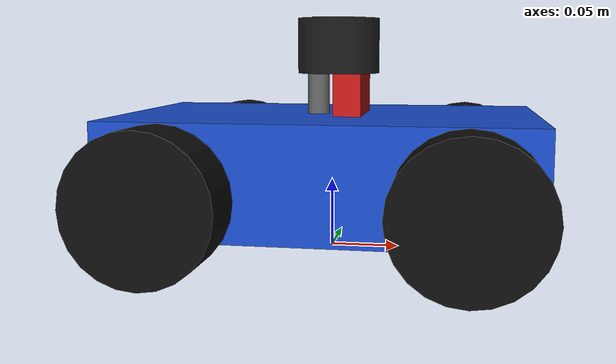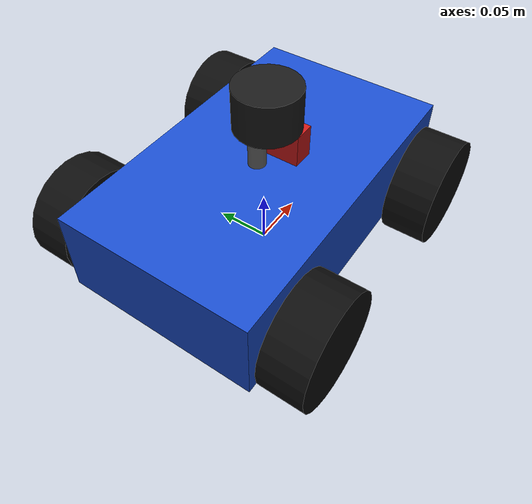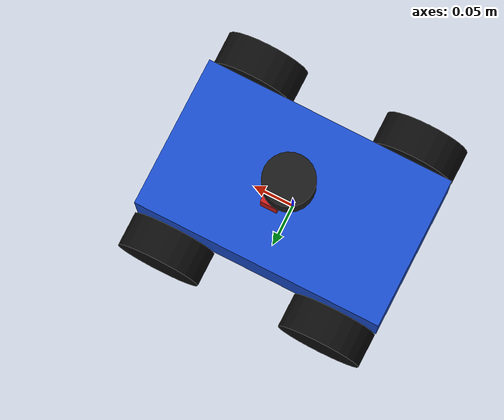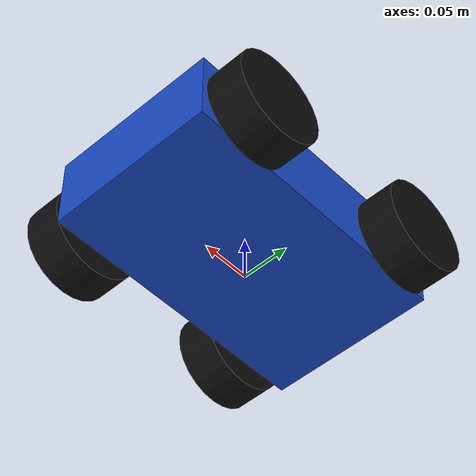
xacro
<?xml version="1.0"?>
<robot xmlns:xacro="http://www.ros.org/wiki/xacro" name="car">

  <!-- ============ Includes ============ -->
  <xacro:include filename="car_properties.xacro"/>
  <xacro:include filename="wheel.xacro"/>
  <xacro:include filename="car.ros2_control.xacro"/>
  <xacro:include filename="sensors.xacro"/>

  <!-- ============ Helper: box inertia ============ -->
  <xacro:macro name="box_inertia" params="m x y z">
    <inertial>
      <origin xyz="0 0 ${chassis_z_offset}" rpy="0 0 0"/>
      <mass value="${m}"/>
      <inertia ixx="${(m / 12.0) * (y * y + z * z)}" ixy="0.0" ixz="0.0"
               iyy="${(m / 12.0) * (x * x + z * z)}" iyz="0.0"
               izz="${(m / 12.0) * (x * x + y * y)}"/>
    </inertial>
  </xacro:macro>

  <!-- ============ Base footprint (ground reference) ============ -->
  <link name="base_footprint"/>

  <!-- ============ Base link (chassis) ============ -->
  <link name="base_link">
    <visual>
      <origin xyz="0 0 ${chassis_z_offset}" rpy="0 0 0"/>
      <geometry>
        <box size="${chassis_length} ${chassis_width} ${chassis_height}"/>
      </geometry>
      <material name="chassis_blue">
        <color rgba="0.1 0.3 0.8 1.0"/>
      </material>
    </visual>
    <collision>
      <origin xyz="0 0 ${chassis_z_offset}" rpy="0 0 0"/>
      <geometry>
        <box size="${chassis_length} ${chassis_width} ${chassis_height}"/>
      </geometry>
    </collision>
    <xacro:box_inertia m="${chassis_mass}"
                       x="${chassis_length}" y="${chassis_width}" z="${chassis_height}"/>
  </link>

  <!-- Lifts base_link so the wheels (centered at z=0 in base_link) touch the ground -->
  <joint name="base_footprint_joint" type="fixed">
    <parent link="base_footprint"/>
    <child link="base_link"/>
    <origin xyz="0 0 ${wheel_radius}" rpy="0 0 0"/>
  </joint>

  <!-- ============ Four wheels ============ -->
  <xacro:wheel name="front_left"  x="${wheel_x_offset}"  y="${wheel_y_offset}"/>
  <xacro:wheel name="front_right" x="${wheel_x_offset}"  y="${-wheel_y_offset}"/>
  <xacro:wheel name="rear_left"   x="${-wheel_x_offset}" y="${wheel_y_offset}"/>
  <xacro:wheel name="rear_right"  x="${-wheel_x_offset}" y="${-wheel_y_offset}"/>

  <!-- ============ ros2_control (gz_ros2_control hardware interface) ============ -->
  <xacro:car_ros2_control/>

  <!-- ============ Sensors (added later via sensors.xacro) ============ -->
  <xacro:car_sensors/>

</robot>

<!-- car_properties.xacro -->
<robot xmlns:xacro="http://www.ros.org/wiki/xacro">

  <!-- All units are SI: meters, kilograms, radians, seconds -->

  <!-- ============ Chassis ============ -->
  <xacro:property name="chassis_length"    value="0.30"/>
  <xacro:property name="chassis_width"     value="0.18"/>
  <xacro:property name="chassis_height"    value="0.08"/>
  <xacro:property name="chassis_mass"      value="2.0"/>
  <xacro:property name="ground_clearance"  value="0.02"/>

  <!-- base_link origin is at wheel-axle height, so the ground is at z = -wheel_radius.
       The chassis center is therefore: -wheel_radius + clearance + height/2 = 0.01 -->
  <xacro:property name="chassis_z_offset"
                  value="${-wheel_radius + ground_clearance + chassis_height / 2.0}"/>

  <!-- ============ Wheels ============ -->
  <xacro:property name="wheel_radius"      value="0.05"/>
  <xacro:property name="wheel_width"       value="0.04"/>
  <xacro:property name="wheel_mass"        value="0.2"/>
  <xacro:property name="wheel_friction"    value="1.0"/>

  <!-- Wheel positions relative to base_link -->
  <xacro:property name="wheel_x_offset"    value="0.10"/>
  <!-- chassis half-width + wheel half-width + 5 mm gap -->
  <xacro:property name="wheel_y_offset"
                  value="${chassis_width / 2.0 + wheel_width / 2.0 + 0.005}"/>

  <!-- ============ Sensor mounting (used later by sensors.xacro) ============ -->
  <!-- Top surface of the chassis in base_link frame -->
  <xacro:property name="chassis_top_z"
                  value="${chassis_z_offset + chassis_height / 2.0}"/>

  <!-- Camera: 1.5 cm ahead of base_link -->
  <xacro:property name="camera_x_offset"   value="0.015"/>
  <xacro:property name="camera_y_offset"   value="0.0"/>
  <xacro:property name="camera_size_x"     value="0.02"/>
  <xacro:property name="camera_size_y"     value="0.06"/>
  <xacro:property name="camera_size_z"     value="0.03"/>
  <xacro:property name="camera_z_offset"
                  value="${chassis_top_z + camera_size_z / 2.0}"/>
  <xacro:property name="camera_width_px"   value="320"/>
  <xacro:property name="camera_height_px"  value="240"/>
  <xacro:property name="camera_hfov"       value="1.047"/>
  <xacro:property name="camera_update_rate" value="10"/>

  <!-- Lidar: 0.5 cm ahead of base_link -->
  <xacro:property name="lidar_x_offset"    value="0.005"/>
  <xacro:property name="lidar_y_offset"    value="0.0"/>
  <!-- Mounted higher than the camera top so the scan plane is not blocked by it.
       Camera top is at chassis_top_z + 0.03; scan plane is 2 cm above that. -->
  <xacro:property name="lidar_z_offset"
                  value="${chassis_top_z + camera_size_z + 0.02}"/>
  <xacro:property name="lidar_radius"      value="0.03"/>
  <xacro:property name="lidar_height"      value="0.04"/>
  <xacro:property name="lidar_samples"     value="360"/>
  <xacro:property name="lidar_min_range"   value="0.12"/>
  <xacro:property name="lidar_max_range"   value="8.0"/>
  <xacro:property name="lidar_update_rate" value="10"/>

  <!-- ============ Topic names (shared with gz_bridge.yaml) ============ -->
  <xacro:property name="lidar_topic"       value="scan"/>
  <xacro:property name="camera_topic"      value="camera/image_raw"/>

</robot>

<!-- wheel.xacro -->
<robot xmlns:xacro="http://www.ros.org/wiki/xacro">

  <xacro:macro name="wheel" params="name x y">

    <link name="${name}_wheel">

      <visual>
        <!-- URDF cylinders point along Z, so roll 90 deg to point along Y (the axle) -->
        <origin xyz="0 0 0" rpy="${pi / 2.0} 0 0"/>
        <geometry>
          <cylinder radius="${wheel_radius}" length="${wheel_width}"/>
        </geometry>
        <material name="wheel_black">
          <color rgba="0.05 0.05 0.05 1.0"/>
        </material>
      </visual>

      <collision>
        <origin xyz="0 0 0" rpy="${pi / 2.0} 0 0"/>
        <geometry>
          <cylinder radius="${wheel_radius}" length="${wheel_width}"/>
        </geometry>
      </collision>

      <!-- Solid cylinder whose axis is Y:
           Iyy = m*r^2/2 (about the axle), Ixx = Izz = m*(3r^2 + h^2)/12 -->
      <inertial>
        <origin xyz="0 0 0" rpy="0 0 0"/>
        <mass value="${wheel_mass}"/>
        <inertia ixx="${wheel_mass * (3.0 * wheel_radius * wheel_radius + wheel_width * wheel_width) / 12.0}"
                 ixy="0.0" ixz="0.0"
                 iyy="${wheel_mass * wheel_radius * wheel_radius / 2.0}"
                 iyz="0.0"
                 izz="${wheel_mass * (3.0 * wheel_radius * wheel_radius + wheel_width * wheel_width) / 12.0}"/>
      </inertial>
    </link>

    <joint name="${name}_wheel_joint" type="continuous">
      <parent link="base_link"/>
      <child link="${name}_wheel"/>
      <origin xyz="${x} ${y} 0" rpy="0 0 0"/>
      <axis xyz="0 1 0"/>
      <dynamics damping="0.01" friction="0.0"/>
    </joint>

    <!-- Gazebo contact properties for this wheel -->
    <gazebo reference="${name}_wheel">
      <mu1>${wheel_friction}</mu1>
      <mu2>${wheel_friction}</mu2>
    </gazebo>

  </xacro:macro>

</robot>

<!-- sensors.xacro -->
<robot xmlns:xacro="http://www.ros.org/wiki/xacro">

  <!-- Sensor masses (small, so they barely affect the chassis dynamics) -->
  <xacro:property name="camera_mass" value="0.05"/>
  <xacro:property name="lidar_mass"  value="0.10"/>
  <xacro:property name="mast_mass"   value="0.02"/>
  <xacro:property name="mast_radius" value="0.008"/>
  <!-- Mast sits behind the camera box but still under the lidar disc -->
  <xacro:property name="mast_x_offset" value="-0.01"/>
  <!-- Mast runs from the chassis top up to the bottom of the lidar -->
  <xacro:property name="mast_length"
                  value="${lidar_z_offset - lidar_height / 2.0 - chassis_top_z}"/>

  <xacro:macro name="car_sensors">

    <!-- ================= Camera ================= -->
    <link name="camera_link">
      <visual>
        <geometry>
          <box size="${camera_size_x} ${camera_size_y} ${camera_size_z}"/>
        </geometry>
        <material name="camera_red">
          <color rgba="0.8 0.1 0.1 1.0"/>
        </material>
      </visual>
      <collision>
        <geometry>
          <box size="${camera_size_x} ${camera_size_y} ${camera_size_z}"/>
        </geometry>
      </collision>
      <inertial>
        <mass value="${camera_mass}"/>
        <inertia ixx="${(camera_mass / 12.0) * (camera_size_y * camera_size_y + camera_size_z * camera_size_z)}"
                 ixy="0.0" ixz="0.0"
                 iyy="${(camera_mass / 12.0) * (camera_size_x * camera_size_x + camera_size_z * camera_size_z)}"
                 iyz="0.0"
                 izz="${(camera_mass / 12.0) * (camera_size_x * camera_size_x + camera_size_y * camera_size_y)}"/>
      </inertial>
    </link>

    <!-- camera_joint: 1.5 cm ahead of base_link -->
    <joint name="camera_joint" type="fixed">
      <parent link="base_link"/>
      <child link="camera_link"/>
      <origin xyz="${camera_x_offset} ${camera_y_offset} ${camera_z_offset}" rpy="0 0 0"/>
    </joint>

    <!-- Optical frame (z forward, x right, y down) on the front face of the camera box.
         Used as the frame_id of the image, so RViz and TF agree with ROS conventions. -->
    <link name="camera_optical_link"/>
    <joint name="camera_optical_joint" type="fixed">
      <parent link="camera_link"/>
      <child link="camera_optical_link"/>
      <origin xyz="${camera_size_x / 2.0} 0 0" rpy="${-pi / 2.0} 0 ${-pi / 2.0}"/>
    </joint>

    <!-- ================= Lidar mast ================= -->
    <link name="lidar_mast_link">
      <visual>
        <origin xyz="0 0 ${mast_length / 2.0}" rpy="0 0 0"/>
        <geometry>
          <cylinder radius="${mast_radius}" length="${mast_length}"/>
        </geometry>
        <material name="mast_grey">
          <color rgba="0.4 0.4 0.4 1.0"/>
        </material>
      </visual>
      <collision>
        <origin xyz="0 0 ${mast_length / 2.0}" rpy="0 0 0"/>
        <geometry>
          <cylinder radius="${mast_radius}" length="${mast_length}"/>
        </geometry>
      </collision>
      <inertial>
        <origin xyz="0 0 ${mast_length / 2.0}" rpy="0 0 0"/>
        <mass value="${mast_mass}"/>
        <inertia ixx="${mast_mass * (3.0 * mast_radius * mast_radius + mast_length * mast_length) / 12.0}"
                 ixy="0.0" ixz="0.0"
                 iyy="${mast_mass * (3.0 * mast_radius * mast_radius + mast_length * mast_length) / 12.0}"
                 iyz="0.0"
                 izz="${mast_mass * mast_radius * mast_radius / 2.0}"/>
      </inertial>
    </link>

    <joint name="lidar_mast_joint" type="fixed">
      <parent link="base_link"/>
      <child link="lidar_mast_link"/>
      <origin xyz="${mast_x_offset} 0 ${chassis_top_z}" rpy="0 0 0"/>
    </joint>

    <!-- ================= Lidar ================= -->
    <link name="lidar_link">
      <visual>
        <geometry>
          <cylinder radius="${lidar_radius}" length="${lidar_height}"/>
        </geometry>
        <material name="lidar_black">
          <color rgba="0.1 0.1 0.1 1.0"/>
        </material>
      </visual>
      <collision>
        <geometry>
          <cylinder radius="${lidar_radius}" length="${lidar_height}"/>
        </geometry>
      </collision>
      <inertial>
        <mass value="${lidar_mass}"/>
        <inertia ixx="${lidar_mass * (3.0 * lidar_radius * lidar_radius + lidar_height * lidar_height) / 12.0}"
                 ixy="0.0" ixz="0.0"
                 iyy="${lidar_mass * (3.0 * lidar_radius * lidar_radius + lidar_height * lidar_height) / 12.0}"
                 iyz="0.0"
                 izz="${lidar_mass * lidar_radius * lidar_radius / 2.0}"/>
      </inertial>
    </link>

    <!-- lidar_joint: 0.5 cm ahead of base_link. The link origin is the scan plane. -->
    <joint name="lidar_joint" type="fixed">
      <parent link="base_link"/>
      <child link="lidar_link"/>
      <origin xyz="${lidar_x_offset} ${lidar_y_offset} ${lidar_z_offset}" rpy="0 0 0"/>
    </joint>

    <!-- ================= Gazebo sensor: lidar ================= -->
    <gazebo reference="lidar_link">
      <sensor name="lidar" type="gpu_lidar">
        <pose>0 0 0 0 0 0</pose>
        <topic>${lidar_topic}</topic>
        <frame_id>lidar_link</frame_id>
        <update_rate>${lidar_update_rate}</update_rate>
        <always_on>true</always_on>
        <visualize>false</visualize>
        <lidar>
          <scan>
            <horizontal>
              <samples>${lidar_samples}</samples>
              <resolution>1</resolution>
              <min_angle>-3.14159</min_angle>
              <max_angle>3.14159</max_angle>
            </horizontal>
            <vertical>
              <samples>1</samples>
              <resolution>1</resolution>
              <min_angle>0.0</min_angle>
              <max_angle>0.0</max_angle>
            </vertical>
          </scan>
          <range>
            <min>${lidar_min_range}</min>
            <max>${lidar_max_range}</max>
            <resolution>0.01</resolution>
          </range>
          <noise>
            <type>gaussian</type>
            <mean>0.0</mean>
            <stddev>0.01</stddev>
          </noise>
        </lidar>
      </sensor>
    </gazebo>

    <!-- ================= Gazebo sensor: camera ================= -->
    <gazebo reference="camera_link">
      <sensor name="camera" type="camera">
        <!-- Start the view at the front face of the camera box -->
        <pose>${camera_size_x / 2.0} 0 0 0 0 0</pose>
        <topic>${camera_topic}</topic>
        <frame_id>camera_optical_link</frame_id>
        <update_rate>${camera_update_rate}</update_rate>
        <always_on>true</always_on>
        <visualize>false</visualize>
        <camera>
          <horizontal_fov>${camera_hfov}</horizontal_fov>
          <image>
            <width>${camera_width_px}</width>
            <height>${camera_height_px}</height>
            <format>R8G8B8</format>
          </image>
          <clip>
            <near>0.05</near>
            <far>20.0</far>
          </clip>
        </camera>
      </sensor>
    </gazebo>

  </xacro:macro>

</robot>
